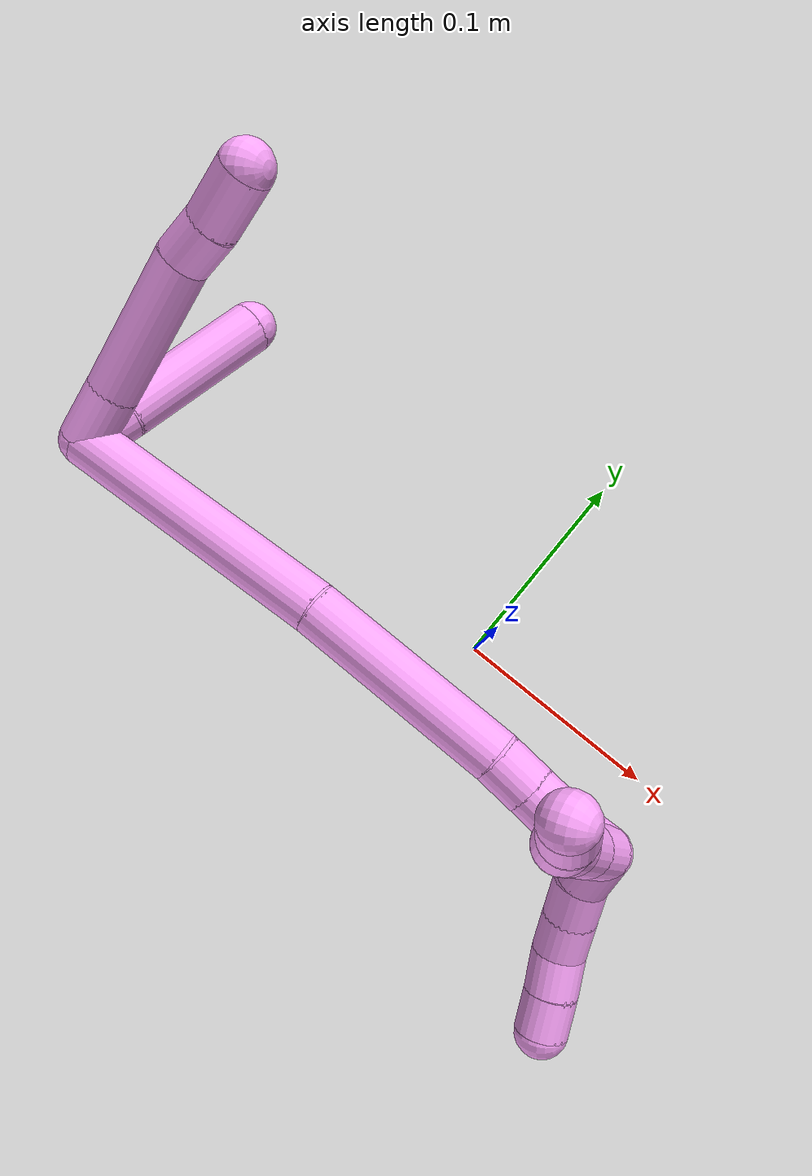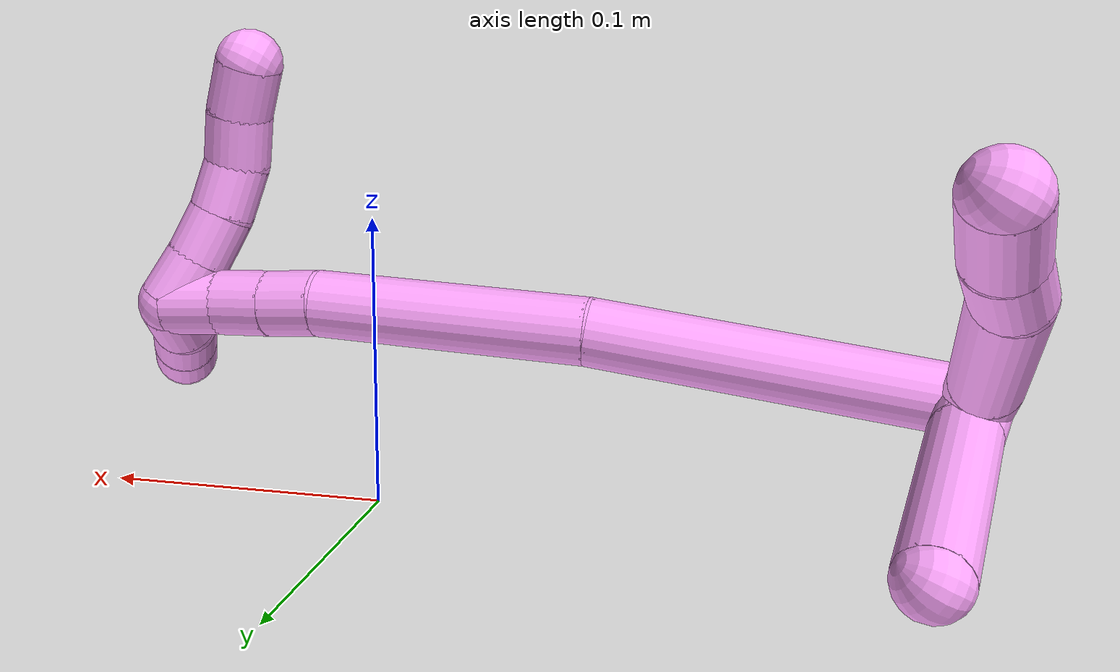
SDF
<sdf version="1.7">
 <world name="default">
  <model name="4">
   <static>0</static>
   <link name="4">
    <collision name="collision-cylinder-e_1_2_8">
     <pose>-0.012377 0.001335 0.006874 -0.191806 -1.05591 0.112083</pose>
     <geometry><cylinder><radius>0.0125</radius><length>0.028441</length></cylinder></geometry>
     <surface>
      <friction><ode><mu>1.16</mu><mu2>1.16</mu2><slip1>0</slip1><slip2>0</slip2></ode></friction>
      <contact><ode><kp>1e+06</kp><kd>1</kd><max_vel>0</max_vel><min_depth>0.001</min_depth></ode></contact>
     </surface>
    </collision>
    <visual name="visual-cylinder-e_1_2_8">
     <pose>-0.012377 0.001335 0.006874 -0.191806 -1.05591 0.112083</pose>
     <geometry><cylinder><radius>0.0125</radius><length>0.028441</length></cylinder></geometry>
     <material><ambient>1 0.65098 0.996078 1</ambient></material>
    </visual>
    <collision name="collision-cylinder-e_2_8_9">
     <pose>-0.054996 0.003593 0.03191 -0.050766 -1.02941 0.028715</pose>
     <geometry><cylinder><radius>0.0125</radius><length>0.070579</length></cylinder></geometry>
     <surface>
      <friction><ode><mu>1.16</mu><mu2>1.16</mu2><slip1>0</slip1><slip2>0</slip2></ode></friction>
      <contact><ode><kp>1e+06</kp><kd>1</kd><max_vel>0</max_vel><min_depth>0.001</min_depth></ode></contact>
     </surface>
    </collision>
    <visual name="visual-cylinder-e_2_8_9">
     <pose>-0.054996 0.003593 0.03191 -0.050766 -1.02941 0.028715</pose>
     <geometry><cylinder><radius>0.0125</radius><length>0.070579</length></cylinder></geometry>
     <material><ambient>1 0.65098 0.996078 1</ambient></material>
    </visual>
    <collision name="collision-cylinder-e_3_9_10">
     <pose>-0.093146 0.00451 0.05774 0.000712 -0.800772 -0.000301</pose>
     <geometry><cylinder><radius>0.0125</radius><length>0.022028</length></cylinder></geometry>
     <surface>
      <friction><ode><mu>1.16</mu><mu2>1.16</mu2><slip1>0</slip1><slip2>0</slip2></ode></friction>
      <contact><ode><kp>1e+06</kp><kd>1</kd><max_vel>0</max_vel><min_depth>0.001</min_depth></ode></contact>
     </surface>
    </collision>
    <visual name="visual-cylinder-e_3_9_10">
     <pose>-0.093146 0.00451 0.05774 0.000712 -0.800772 -0.000301</pose>
     <geometry><cylinder><radius>0.0125</radius><length>0.022028</length></cylinder></geometry>
     <material><ambient>1 0.65098 0.996078 1</ambient></material>
    </visual>
    <collision name="collision-cylinder-e_4_10_6">
     <pose>-0.112281 0.003115 0.074438 0.15265 -0.887715 -0.072695</pose>
     <geometry><cylinder><radius>0.0125</radius><length>0.028952</length></cylinder></geometry>
     <surface>
      <friction><ode><mu>1.16</mu><mu2>1.16</mu2><slip1>0</slip1><slip2>0</slip2></ode></friction>
      <contact><ode><kp>1e+06</kp><kd>1</kd><max_vel>0</max_vel><min_depth>0.001</min_depth></ode></contact>
     </surface>
    </collision>
    <visual name="visual-cylinder-e_4_10_6">
     <pose>-0.112281 0.003115 0.074438 0.15265 -0.887715 -0.072695</pose>
     <geometry><cylinder><radius>0.0125</radius><length>0.028952</length></cylinder></geometry>
     <material><ambient>1 0.65098 0.996078 1</ambient></material>
    </visual>
    <collision name="collision-cylinder-e_1_2_11">
     <pose>-0.006303 0.008931 0.004195 -1.13169 -0.568483 0.36693</pose>
     <geometry><cylinder><radius>0.0125</radius><length>0.023417</length></cylinder></geometry>
     <surface>
      <friction><ode><mu>1.16</mu><mu2>1.16</mu2><slip1>0</slip1><slip2>0</slip2></ode></friction>
      <contact><ode><kp>1e+06</kp><kd>1</kd><max_vel>0</max_vel><min_depth>0.001</min_depth></ode></contact>
     </surface>
    </collision>
    <visual name="visual-cylinder-e_1_2_11">
     <pose>-0.006303 0.008931 0.004195 -1.13169 -0.568483 0.36693</pose>
     <geometry><cylinder><radius>0.0125</radius><length>0.023417</length></cylinder></geometry>
     <material><ambient>1 0.65098 0.996078 1</ambient></material>
    </visual>
    <collision name="collision-cylinder-e_2_11_5">
     <pose>-0.033185 0.048361 0.019 -1.23599 -0.567356 0.40872</pose>
     <geometry><cylinder><radius>0.0125</radius><length>0.076583</length></cylinder></geometry>
     <surface>
      <friction><ode><mu>1.16</mu><mu2>1.16</mu2><slip1>0</slip1><slip2>0</slip2></ode></friction>
      <contact><ode><kp>1e+06</kp><kd>1</kd><max_vel>0</max_vel><min_depth>0.001</min_depth></ode></contact>
     </surface>
    </collision>
    <visual name="visual-cylinder-e_2_11_5">
     <pose>-0.033185 0.048361 0.019 -1.23599 -0.567356 0.40872</pose>
     <geometry><cylinder><radius>0.0125</radius><length>0.076583</length></cylinder></geometry>
     <material><ambient>1 0.65098 0.996078 1</ambient></material>
    </visual>
    <collision name="collision-cylinder-e_1_2_12">
     <pose>0.027698 0.010768 0.061018 -0.174679 0.420372 -0.037356</pose>
     <geometry><cylinder><radius>0.0125</radius><length>0.13574</length></cylinder></geometry>
     <surface>
      <friction><ode><mu>1.16</mu><mu2>1.16</mu2><slip1>0</slip1><slip2>0</slip2></ode></friction>
      <contact><ode><kp>1e+06</kp><kd>1</kd><max_vel>0</max_vel><min_depth>0.001</min_depth></ode></contact>
     </surface>
    </collision>
    <visual name="visual-cylinder-e_1_2_12">
     <pose>0.027698 0.010768 0.061018 -0.174679 0.420372 -0.037356</pose>
     <geometry><cylinder><radius>0.0125</radius><length>0.13574</length></cylinder></geometry>
     <material><ambient>1 0.65098 0.996078 1</ambient></material>
    </visual>
    <collision name="collision-cylinder-e_2_12_13">
     <pose>0.080225 0.032073 0.16552 -0.237731 0.50663 -0.061815</pose>
     <geometry><cylinder><radius>0.0125</radius><length>0.10234</length></cylinder></geometry>
     <surface>
      <friction><ode><mu>1.16</mu><mu2>1.16</mu2><slip1>0</slip1><slip2>0</slip2></ode></friction>
      <contact><ode><kp>1e+06</kp><kd>1</kd><max_vel>0</max_vel><min_depth>0.001</min_depth></ode></contact>
     </surface>
    </collision>
    <visual name="visual-cylinder-e_2_12_13">
     <pose>0.080225 0.032073 0.16552 -0.237731 0.50663 -0.061815</pose>
     <geometry><cylinder><radius>0.0125</radius><length>0.10234</length></cylinder></geometry>
     <material><ambient>1 0.65098 0.996078 1</ambient></material>
    </visual>
    <collision name="collision-cylinder-e_3_13_14">
     <pose>0.110928 0.045212 0.216767 -0.32344 0.622372 -0.10485</pose>
     <geometry><cylinder><radius>0.0125</radius><length>0.020153</length></cylinder></geometry>
     <surface>
      <friction><ode><mu>1.16</mu><mu2>1.16</mu2><slip1>0</slip1><slip2>0</slip2></ode></friction>
      <contact><ode><kp>1e+06</kp><kd>1</kd><max_vel>0</max_vel><min_depth>0.001</min_depth></ode></contact>
     </surface>
    </collision>
    <visual name="visual-cylinder-e_3_13_14">
     <pose>0.110928 0.045212 0.216767 -0.32344 0.622372 -0.10485</pose>
     <geometry><cylinder><radius>0.0125</radius><length>0.020153</length></cylinder></geometry>
     <material><ambient>1 0.65098 0.996078 1</ambient></material>
    </visual>
    <collision name="collision-cylinder-e_4_14_15">
     <pose>0.122803 0.050227 0.232623 -0.289658 0.617726 -0.093007</pose>
     <geometry><cylinder><radius>0.0125</radius><length>0.02072</length></cylinder></geometry>
     <surface>
      <friction><ode><mu>1.16</mu><mu2>1.16</mu2><slip1>0</slip1><slip2>0</slip2></ode></friction>
      <contact><ode><kp>1e+06</kp><kd>1</kd><max_vel>0</max_vel><min_depth>0.001</min_depth></ode></contact>
     </surface>
    </collision>
    <visual name="visual-cylinder-e_4_14_15">
     <pose>0.122803 0.050227 0.232623 -0.289658 0.617726 -0.093007</pose>
     <geometry><cylinder><radius>0.0125</radius><length>0.02072</length></cylinder></geometry>
     <material><ambient>1 0.65098 0.996078 1</ambient></material>
    </visual>
    <collision name="collision-cylinder-e_5_15_1">
     <pose>0.133884 0.055839 0.249359 -0.354649 0.503882 -0.092194</pose>
     <geometry><cylinder><radius>0.0125</radius><length>0.021047</length></cylinder></geometry>
     <surface>
      <friction><ode><mu>1.16</mu><mu2>1.16</mu2><slip1>0</slip1><slip2>0</slip2></ode></friction>
      <contact><ode><kp>1e+06</kp><kd>1</kd><max_vel>0</max_vel><min_depth>0.001</min_depth></ode></contact>
     </surface>
    </collision>
    <visual name="visual-cylinder-e_5_15_1">
     <pose>0.133884 0.055839 0.249359 -0.354649 0.503882 -0.092194</pose>
     <geometry><cylinder><radius>0.0125</radius><length>0.021047</length></cylinder></geometry>
     <material><ambient>1 0.65098 0.996078 1</ambient></material>
    </visual>
    <collision name="collision-cylinder-e_1_1_16">
     <pose>0.134964 0.049916 0.257133 1.66562 -0.411643 -0.451332</pose>
     <geometry><cylinder><radius>0.0125</radius><length>0.02</length></cylinder></geometry>
     <surface>
      <friction><ode><mu>1.16</mu><mu2>1.16</mu2><slip1>0</slip1><slip2>0</slip2></ode></friction>
      <contact><ode><kp>1e+06</kp><kd>1</kd><max_vel>0</max_vel><min_depth>0.001</min_depth></ode></contact>
     </surface>
    </collision>
    <visual name="visual-cylinder-e_1_1_16">
     <pose>0.134964 0.049916 0.257133 1.66562 -0.411643 -0.451332</pose>
     <geometry><cylinder><radius>0.0125</radius><length>0.02</length></cylinder></geometry>
     <material><ambient>1 0.65098 0.996078 1</ambient></material>
    </visual>
    <collision name="collision-cylinder-e_2_16_17">
     <pose>0.126657 0.031767 0.256275 1.56971 -0.44518 -0.444711</pose>
     <geometry><cylinder><radius>0.0125</radius><length>0.02</length></cylinder></geometry>
     <surface>
      <friction><ode><mu>1.16</mu><mu2>1.16</mu2><slip1>0</slip1><slip2>0</slip2></ode></friction>
      <contact><ode><kp>1e+06</kp><kd>1</kd><max_vel>0</max_vel><min_depth>0.001</min_depth></ode></contact>
     </surface>
    </collision>
    <visual name="visual-cylinder-e_2_16_17">
     <pose>0.126657 0.031767 0.256275 1.56971 -0.44518 -0.444711</pose>
     <geometry><cylinder><radius>0.0125</radius><length>0.02</length></cylinder></geometry>
     <material><ambient>1 0.65098 0.996078 1</ambient></material>
    </visual>
    <collision name="collision-cylinder-e_3_17_18">
     <pose>0.11805 0.013856 0.257882 1.39299 -0.444612 -0.373675</pose>
     <geometry><cylinder><radius>0.0125</radius><length>0.02</length></cylinder></geometry>
     <surface>
      <friction><ode><mu>1.16</mu><mu2>1.16</mu2><slip1>0</slip1><slip2>0</slip2></ode></friction>
      <contact><ode><kp>1e+06</kp><kd>1</kd><max_vel>0</max_vel><min_depth>0.001</min_depth></ode></contact>
     </surface>
    </collision>
    <visual name="visual-cylinder-e_3_17_18">
     <pose>0.11805 0.013856 0.257882 1.39299 -0.444612 -0.373675</pose>
     <geometry><cylinder><radius>0.0125</radius><length>0.02</length></cylinder></geometry>
     <material><ambient>1 0.65098 0.996078 1</ambient></material>
    </visual>
    <collision name="collision-cylinder-e_4_18_19">
     <pose>0.107826 -0.002165 0.263221 1.0878 -0.633856 -0.391611</pose>
     <geometry><cylinder><radius>0.0125</radius><length>0.02</length></cylinder></geometry>
     <surface>
      <friction><ode><mu>1.16</mu><mu2>1.16</mu2><slip1>0</slip1><slip2>0</slip2></ode></friction>
      <contact><ode><kp>1e+06</kp><kd>1</kd><max_vel>0</max_vel><min_depth>0.001</min_depth></ode></contact>
     </surface>
    </collision>
    <visual name="visual-cylinder-e_4_18_19">
     <pose>0.107826 -0.002165 0.263221 1.0878 -0.633856 -0.391611</pose>
     <geometry><cylinder><radius>0.0125</radius><length>0.02</length></cylinder></geometry>
     <material><ambient>1 0.65098 0.996078 1</ambient></material>
    </visual>
    <collision name="collision-cylinder-e_5_19_4">
     <pose>0.095252 -0.016385 0.269325 1.24887 -0.727652 -0.535613</pose>
     <geometry><cylinder><radius>0.0125</radius><length>0.02</length></cylinder></geometry>
     <surface>
      <friction><ode><mu>1.16</mu><mu2>1.16</mu2><slip1>0</slip1><slip2>0</slip2></ode></friction>
      <contact><ode><kp>1e+06</kp><kd>1</kd><max_vel>0</max_vel><min_depth>0.001</min_depth></ode></contact>
     </surface>
    </collision>
    <visual name="visual-cylinder-e_5_19_4">
     <pose>0.095252 -0.016385 0.269325 1.24887 -0.727652 -0.535613</pose>
     <geometry><cylinder><radius>0.0125</radius><length>0.02</length></cylinder></geometry>
     <material><ambient>1 0.65098 0.996078 1</ambient></material>
    </visual>
    <collision name="collision-cylinder-e_1_1_20">
     <pose>0.148011 0.060046 0.253858 -2.90319 1.13031 -2.76826</pose>
     <geometry><cylinder><radius>0.0125</radius><length>0.02</length></cylinder></geometry>
     <surface>
      <friction><ode><mu>1.16</mu><mu2>1.16</mu2><slip1>0</slip1><slip2>0</slip2></ode></friction>
      <contact><ode><kp>1e+06</kp><kd>1</kd><max_vel>0</max_vel><min_depth>0.001</min_depth></ode></contact>
     </surface>
    </collision>
    <visual name="visual-cylinder-e_1_1_20">
     <pose>0.148011 0.060046 0.253858 -2.90319 1.13031 -2.76826</pose>
     <geometry><cylinder><radius>0.0125</radius><length>0.02</length></cylinder></geometry>
     <material><ambient>1 0.65098 0.996078 1</ambient></material>
    </visual>
    <collision name="collision-cylinder-e_2_20_21">
     <pose>0.166876 0.062091 0.248133 -2.56079 1.38045 -2.44707</pose>
     <geometry><cylinder><radius>0.0125</radius><length>0.02</length></cylinder></geometry>
     <surface>
      <friction><ode><mu>1.16</mu><mu2>1.16</mu2><slip1>0</slip1><slip2>0</slip2></ode></friction>
      <contact><ode><kp>1e+06</kp><kd>1</kd><max_vel>0</max_vel><min_depth>0.001</min_depth></ode></contact>
     </surface>
    </collision>
    <visual name="visual-cylinder-e_2_20_21">
     <pose>0.166876 0.062091 0.248133 -2.56079 1.38045 -2.44707</pose>
     <geometry><cylinder><radius>0.0125</radius><length>0.02</length></cylinder></geometry>
     <material><ambient>1 0.65098 0.996078 1</ambient></material>
    </visual>
    <collision name="collision-cylinder-e_3_21_22">
     <pose>0.186601 0.063473 0.245224 -2.88825 1.43332 -2.85128</pose>
     <geometry><cylinder><radius>0.0125</radius><length>0.02</length></cylinder></geometry>
     <surface>
      <friction><ode><mu>1.16</mu><mu2>1.16</mu2><slip1>0</slip1><slip2>0</slip2></ode></friction>
      <contact><ode><kp>1e+06</kp><kd>1</kd><max_vel>0</max_vel><min_depth>0.001</min_depth></ode></contact>
     </surface>
    </collision>
    <visual name="visual-cylinder-e_3_21_22">
     <pose>0.186601 0.063473 0.245224 -2.88825 1.43332 -2.85128</pose>
     <geometry><cylinder><radius>0.0125</radius><length>0.02</length></cylinder></geometry>
     <material><ambient>1 0.65098 0.996078 1</ambient></material>
    </visual>
    <collision name="collision-cylinder-e_4_22_23">
     <pose>0.206317 0.061919 0.244282 1.37063 1.37598 1.1833</pose>
     <geometry><cylinder><radius>0.0125</radius><length>0.02</length></cylinder></geometry>
     <surface>
      <friction><ode><mu>1.16</mu><mu2>1.16</mu2><slip1>0</slip1><slip2>0</slip2></ode></friction>
      <contact><ode><kp>1e+06</kp><kd>1</kd><max_vel>0</max_vel><min_depth>0.001</min_depth></ode></contact>
     </surface>
    </collision>
    <visual name="visual-cylinder-e_4_22_23">
     <pose>0.206317 0.061919 0.244282 1.37063 1.37598 1.1833</pose>
     <geometry><cylinder><radius>0.0125</radius><length>0.02</length></cylinder></geometry>
     <material><ambient>1 0.65098 0.996078 1</ambient></material>
    </visual>
    <collision name="collision-cylinder-e_5_23_3">
     <pose>0.225973 0.058273 0.244518 1.65565 1.39435 1.47851</pose>
     <geometry><cylinder><radius>0.0125</radius><length>0.02</length></cylinder></geometry>
     <surface>
      <friction><ode><mu>1.16</mu><mu2>1.16</mu2><slip1>0</slip1><slip2>0</slip2></ode></friction>
      <contact><ode><kp>1e+06</kp><kd>1</kd><max_vel>0</max_vel><min_depth>0.001</min_depth></ode></contact>
     </surface>
    </collision>
    <visual name="visual-cylinder-e_5_23_3">
     <pose>0.225973 0.058273 0.244518 1.65565 1.39435 1.47851</pose>
     <geometry><cylinder><radius>0.0125</radius><length>0.02</length></cylinder></geometry>
     <material><ambient>1 0.65098 0.996078 1</ambient></material>
    </visual>
    <collision name="collision-sphere-3">
     <pose>0.235818 0.056524 0.24437 0 -0 0</pose>
     <geometry><sphere><radius>0.0125</radius></sphere></geometry>
     <surface>
      <friction><ode><mu>1.16</mu><mu2>1.16</mu2><slip1>0</slip1><slip2>0</slip2></ode></friction>
      <contact><ode><kp>1e+06</kp><kd>1</kd><max_vel>0</max_vel><min_depth>0.001</min_depth></ode></contact>
     </surface>
    </collision>
    <visual name="visual-sphere-3">
     <pose>0.235818 0.056524 0.24437 0 -0 0</pose>
     <geometry><sphere><radius>0.0125</radius></sphere></geometry>
     <material><ambient>1 0.65098 0.996078 1</ambient></material>
    </visual>
    <collision name="collision-sphere-23">
     <pose>0.216128 0.060022 0.244667 0 -0 0</pose>
     <geometry><sphere><radius>0.0125</radius></sphere></geometry>
     <surface>
      <friction><ode><mu>1.16</mu><mu2>1.16</mu2><slip1>0</slip1><slip2>0</slip2></ode></friction>
      <contact><ode><kp>1e+06</kp><kd>1</kd><max_vel>0</max_vel><min_depth>0.001</min_depth></ode></contact>
     </surface>
    </collision>
    <visual name="visual-sphere-23">
     <pose>0.216128 0.060022 0.244667 0 -0 0</pose>
     <geometry><sphere><radius>0.0125</radius></sphere></geometry>
     <material><ambient>1 0.65098 0.996078 1</ambient></material>
    </visual>
    <collision name="collision-sphere-22">
     <pose>0.196506 0.063816 0.243897 0 -0 0</pose>
     <geometry><sphere><radius>0.0125</radius></sphere></geometry>
     <surface>
      <friction><ode><mu>1.16</mu><mu2>1.16</mu2><slip1>0</slip1><slip2>0</slip2></ode></friction>
      <contact><ode><kp>1e+06</kp><kd>1</kd><max_vel>0</max_vel><min_depth>0.001</min_depth></ode></contact>
     </surface>
    </collision>
    <visual name="visual-sphere-22">
     <pose>0.196506 0.063816 0.243897 0 -0 0</pose>
     <geometry><sphere><radius>0.0125</radius></sphere></geometry>
     <material><ambient>1 0.65098 0.996078 1</ambient></material>
    </visual>
    <collision name="collision-sphere-21">
     <pose>0.176695 0.063129 0.246551 0 -0 0</pose>
     <geometry><sphere><radius>0.0125</radius></sphere></geometry>
     <surface>
      <friction><ode><mu>1.16</mu><mu2>1.16</mu2><slip1>0</slip1><slip2>0</slip2></ode></friction>
      <contact><ode><kp>1e+06</kp><kd>1</kd><max_vel>0</max_vel><min_depth>0.001</min_depth></ode></contact>
     </surface>
    </collision>
    <visual name="visual-sphere-21">
     <pose>0.176695 0.063129 0.246551 0 -0 0</pose>
     <geometry><sphere><radius>0.0125</radius></sphere></geometry>
     <material><ambient>1 0.65098 0.996078 1</ambient></material>
    </visual>
    <collision name="collision-sphere-20">
     <pose>0.157056 0.061053 0.249714 0 -0 0</pose>
     <geometry><sphere><radius>0.0125</radius></sphere></geometry>
     <surface>
      <friction><ode><mu>1.16</mu><mu2>1.16</mu2><slip1>0</slip1><slip2>0</slip2></ode></friction>
      <contact><ode><kp>1e+06</kp><kd>1</kd><max_vel>0</max_vel><min_depth>0.001</min_depth></ode></contact>
     </surface>
    </collision>
    <visual name="visual-sphere-20">
     <pose>0.157056 0.061053 0.249714 0 -0 0</pose>
     <geometry><sphere><radius>0.0125</radius></sphere></geometry>
     <material><ambient>1 0.65098 0.996078 1</ambient></material>
    </visual>
    <collision name="collision-sphere-4">
     <pose>0.088601 -0.023468 0.271688 0 -0 0</pose>
     <geometry><sphere><radius>0.0125</radius></sphere></geometry>
     <surface>
      <friction><ode><mu>1.16</mu><mu2>1.16</mu2><slip1>0</slip1><slip2>0</slip2></ode></friction>
      <contact><ode><kp>1e+06</kp><kd>1</kd><max_vel>0</max_vel><min_depth>0.001</min_depth></ode></contact>
     </surface>
    </collision>
    <visual name="visual-sphere-4">
     <pose>0.088601 -0.023468 0.271688 0 -0 0</pose>
     <geometry><sphere><radius>0.0125</radius></sphere></geometry>
     <material><ambient>1 0.65098 0.996078 1</ambient></material>
    </visual>
    <collision name="collision-sphere-11">
     <pose>-0.012607 0.017862 0.00839 0 -0 0</pose>
     <geometry><sphere><radius>0.0125</radius></sphere></geometry>
     <surface>
      <friction><ode><mu>1.16</mu><mu2>1.16</mu2><slip1>0</slip1><slip2>0</slip2></ode></friction>
      <contact><ode><kp>1e+06</kp><kd>1</kd><max_vel>0</max_vel><min_depth>0.001</min_depth></ode></contact>
     </surface>
    </collision>
    <visual name="visual-sphere-11">
     <pose>-0.012607 0.017862 0.00839 0 -0 0</pose>
     <geometry><sphere><radius>0.0125</radius></sphere></geometry>
     <material><ambient>1 0.65098 0.996078 1</ambient></material>
    </visual>
    <collision name="collision-sphere-6">
     <pose>-0.123509 0.001726 0.083469 0 -0 0</pose>
     <geometry><sphere><radius>0.0125</radius></sphere></geometry>
     <surface>
      <friction><ode><mu>1.16</mu><mu2>1.16</mu2><slip1>0</slip1><slip2>0</slip2></ode></friction>
      <contact><ode><kp>1e+06</kp><kd>1</kd><max_vel>0</max_vel><min_depth>0.001</min_depth></ode></contact>
     </surface>
    </collision>
    <visual name="visual-sphere-6">
     <pose>-0.123509 0.001726 0.083469 0 -0 0</pose>
     <geometry><sphere><radius>0.0125</radius></sphere></geometry>
     <material><ambient>1 0.65098 0.996078 1</ambient></material>
    </visual>
    <collision name="collision-sphere-10">
     <pose>-0.101053 0.004505 0.065407 0 -0 0</pose>
     <geometry><sphere><radius>0.0125</radius></sphere></geometry>
     <surface>
      <friction><ode><mu>1.16</mu><mu2>1.16</mu2><slip1>0</slip1><slip2>0</slip2></ode></friction>
      <contact><ode><kp>1e+06</kp><kd>1</kd><max_vel>0</max_vel><min_depth>0.001</min_depth></ode></contact>
     </surface>
    </collision>
    <visual name="visual-sphere-10">
     <pose>-0.101053 0.004505 0.065407 0 -0 0</pose>
     <geometry><sphere><radius>0.0125</radius></sphere></geometry>
     <material><ambient>1 0.65098 0.996078 1</ambient></material>
    </visual>
    <collision name="collision-sphere-9">
     <pose>-0.085239 0.004515 0.050073 0 -0 0</pose>
     <geometry><sphere><radius>0.0125</radius></sphere></geometry>
     <surface>
      <friction><ode><mu>1.16</mu><mu2>1.16</mu2><slip1>0</slip1><slip2>0</slip2></ode></friction>
      <contact><ode><kp>1e+06</kp><kd>1</kd><max_vel>0</max_vel><min_depth>0.001</min_depth></ode></contact>
     </surface>
    </collision>
    <visual name="visual-sphere-9">
     <pose>-0.085239 0.004515 0.050073 0 -0 0</pose>
     <geometry><sphere><radius>0.0125</radius></sphere></geometry>
     <material><ambient>1 0.65098 0.996078 1</ambient></material>
    </visual>
    <collision name="collision-sphere-2">
     <geometry><sphere><radius>0.0125</radius></sphere></geometry>
     <surface>
      <friction><ode><mu>1.16</mu><mu2>1.16</mu2><slip1>0</slip1><slip2>0</slip2></ode></friction>
      <contact><ode><kp>1e+06</kp><kd>1</kd><max_vel>0</max_vel><min_depth>0.001</min_depth></ode></contact>
     </surface>
    </collision>
    <visual name="visual-sphere-2">
     <geometry><sphere><radius>0.0125</radius></sphere></geometry>
     <material><ambient>1 0.65098 0.996078 1</ambient></material>
    </visual>
    <collision name="collision-sphere-19">
     <pose>0.101903 -0.009301 0.266963 0 -0 0</pose>
     <geometry><sphere><radius>0.0125</radius></sphere></geometry>
     <surface>
      <friction><ode><mu>1.16</mu><mu2>1.16</mu2><slip1>0</slip1><slip2>0</slip2></ode></friction>
      <contact><ode><kp>1e+06</kp><kd>1</kd><max_vel>0</max_vel><min_depth>0.001</min_depth></ode></contact>
     </surface>
    </collision>
    <visual name="visual-sphere-19">
     <pose>0.101903 -0.009301 0.266963 0 -0 0</pose>
     <geometry><sphere><radius>0.0125</radius></sphere></geometry>
     <material><ambient>1 0.65098 0.996078 1</ambient></material>
    </visual>
    <collision name="collision-sphere-8">
     <pose>-0.024753 0.00267 0.013748 0 -0 0</pose>
     <geometry><sphere><radius>0.0125</radius></sphere></geometry>
     <surface>
      <friction><ode><mu>1.16</mu><mu2>1.16</mu2><slip1>0</slip1><slip2>0</slip2></ode></friction>
      <contact><ode><kp>1e+06</kp><kd>1</kd><max_vel>0</max_vel><min_depth>0.001</min_depth></ode></contact>
     </surface>
    </collision>
    <visual name="visual-sphere-8">
     <pose>-0.024753 0.00267 0.013748 0 -0 0</pose>
     <geometry><sphere><radius>0.0125</radius></sphere></geometry>
     <material><ambient>1 0.65098 0.996078 1</ambient></material>
    </visual>
    <collision name="collision-sphere-5">
     <pose>-0.053763 0.07886 0.029611 0 -0 0</pose>
     <geometry><sphere><radius>0.0125</radius></sphere></geometry>
     <surface>
      <friction><ode><mu>1.16</mu><mu2>1.16</mu2><slip1>0</slip1><slip2>0</slip2></ode></friction>
      <contact><ode><kp>1e+06</kp><kd>1</kd><max_vel>0</max_vel><min_depth>0.001</min_depth></ode></contact>
     </surface>
    </collision>
    <visual name="visual-sphere-5">
     <pose>-0.053763 0.07886 0.029611 0 -0 0</pose>
     <geometry><sphere><radius>0.0125</radius></sphere></geometry>
     <material><ambient>1 0.65098 0.996078 1</ambient></material>
    </visual>
    <collision name="collision-sphere-12">
     <pose>0.055395 0.021537 0.122036 0 -0 0</pose>
     <geometry><sphere><radius>0.0125</radius></sphere></geometry>
     <surface>
      <friction><ode><mu>1.16</mu><mu2>1.16</mu2><slip1>0</slip1><slip2>0</slip2></ode></friction>
      <contact><ode><kp>1e+06</kp><kd>1</kd><max_vel>0</max_vel><min_depth>0.001</min_depth></ode></contact>
     </surface>
    </collision>
    <visual name="visual-sphere-12">
     <pose>0.055395 0.021537 0.122036 0 -0 0</pose>
     <geometry><sphere><radius>0.0125</radius></sphere></geometry>
     <material><ambient>1 0.65098 0.996078 1</ambient></material>
    </visual>
    <collision name="collision-sphere-13">
     <pose>0.105054 0.04261 0.209004 0 -0 0</pose>
     <geometry><sphere><radius>0.0125</radius></sphere></geometry>
     <surface>
      <friction><ode><mu>1.16</mu><mu2>1.16</mu2><slip1>0</slip1><slip2>0</slip2></ode></friction>
      <contact><ode><kp>1e+06</kp><kd>1</kd><max_vel>0</max_vel><min_depth>0.001</min_depth></ode></contact>
     </surface>
    </collision>
    <visual name="visual-sphere-13">
     <pose>0.105054 0.04261 0.209004 0 -0 0</pose>
     <geometry><sphere><radius>0.0125</radius></sphere></geometry>
     <material><ambient>1 0.65098 0.996078 1</ambient></material>
    </visual>
    <collision name="collision-sphere-14">
     <pose>0.116803 0.047814 0.224529 0 -0 0</pose>
     <geometry><sphere><radius>0.0125</radius></sphere></geometry>
     <surface>
      <friction><ode><mu>1.16</mu><mu2>1.16</mu2><slip1>0</slip1><slip2>0</slip2></ode></friction>
      <contact><ode><kp>1e+06</kp><kd>1</kd><max_vel>0</max_vel><min_depth>0.001</min_depth></ode></contact>
     </surface>
    </collision>
    <visual name="visual-sphere-14">
     <pose>0.116803 0.047814 0.224529 0 -0 0</pose>
     <geometry><sphere><radius>0.0125</radius></sphere></geometry>
     <material><ambient>1 0.65098 0.996078 1</ambient></material>
    </visual>
    <collision name="collision-sphere-15">
     <pose>0.128803 0.052639 0.240716 0 -0 0</pose>
     <geometry><sphere><radius>0.0125</radius></sphere></geometry>
     <surface>
      <friction><ode><mu>1.16</mu><mu2>1.16</mu2><slip1>0</slip1><slip2>0</slip2></ode></friction>
      <contact><ode><kp>1e+06</kp><kd>1</kd><max_vel>0</max_vel><min_depth>0.001</min_depth></ode></contact>
     </surface>
    </collision>
    <visual name="visual-sphere-15">
     <pose>0.128803 0.052639 0.240716 0 -0 0</pose>
     <geometry><sphere><radius>0.0125</radius></sphere></geometry>
     <material><ambient>1 0.65098 0.996078 1</ambient></material>
    </visual>
    <collision name="collision-sphere-1">
     <pose>0.138965 0.059039 0.258001 0 -0 0</pose>
     <geometry><sphere><radius>0.0125</radius></sphere></geometry>
     <surface>
      <friction><ode><mu>1.16</mu><mu2>1.16</mu2><slip1>0</slip1><slip2>0</slip2></ode></friction>
      <contact><ode><kp>1e+06</kp><kd>1</kd><max_vel>0</max_vel><min_depth>0.001</min_depth></ode></contact>
     </surface>
    </collision>
    <visual name="visual-sphere-1">
     <pose>0.138965 0.059039 0.258001 0 -0 0</pose>
     <geometry><sphere><radius>0.0125</radius></sphere></geometry>
     <material><ambient>1 0.65098 0.996078 1</ambient></material>
    </visual>
    <collision name="collision-sphere-18">
     <pose>0.113749 0.004971 0.259478 0 -0 0</pose>
     <geometry><sphere><radius>0.0125</radius></sphere></geometry>
     <surface>
      <friction><ode><mu>1.16</mu><mu2>1.16</mu2><slip1>0</slip1><slip2>0</slip2></ode></friction>
      <contact><ode><kp>1e+06</kp><kd>1</kd><max_vel>0</max_vel><min_depth>0.001</min_depth></ode></contact>
     </surface>
    </collision>
    <visual name="visual-sphere-18">
     <pose>0.113749 0.004971 0.259478 0 -0 0</pose>
     <geometry><sphere><radius>0.0125</radius></sphere></geometry>
     <material><ambient>1 0.65098 0.996078 1</ambient></material>
    </visual>
    <collision name="collision-sphere-16">
     <pose>0.130963 0.040792 0.256265 0 -0 0</pose>
     <geometry><sphere><radius>0.0125</radius></sphere></geometry>
     <surface>
      <friction><ode><mu>1.16</mu><mu2>1.16</mu2><slip1>0</slip1><slip2>0</slip2></ode></friction>
      <contact><ode><kp>1e+06</kp><kd>1</kd><max_vel>0</max_vel><min_depth>0.001</min_depth></ode></contact>
     </surface>
    </collision>
    <visual name="visual-sphere-16">
     <pose>0.130963 0.040792 0.256265 0 -0 0</pose>
     <geometry><sphere><radius>0.0125</radius></sphere></geometry>
     <material><ambient>1 0.65098 0.996078 1</ambient></material>
    </visual>
    <collision name="collision-sphere-17">
     <pose>0.122351 0.022742 0.256285 0 -0 0</pose>
     <geometry><sphere><radius>0.0125</radius></sphere></geometry>
     <surface>
      <friction><ode><mu>1.16</mu><mu2>1.16</mu2><slip1>0</slip1><slip2>0</slip2></ode></friction>
      <contact><ode><kp>1e+06</kp><kd>1</kd><max_vel>0</max_vel><min_depth>0.001</min_depth></ode></contact>
     </surface>
    </collision>
    <visual name="visual-sphere-17">
     <pose>0.122351 0.022742 0.256285 0 -0 0</pose>
     <geometry><sphere><radius>0.0125</radius></sphere></geometry>
     <material><ambient>1 0.65098 0.996078 1</ambient></material>
    </visual>
    <inertial>
     <pose>0.050231 0.026561 0.130512 0 -0 0</pose>
     <mass>0.75</mass>
     <inertia>
      <ixx>0.000339</ixx>
      <ixy>0</ixy>
      <ixz>0</ixz>
      <iyy>0.000381</iyy>
      <iyz>0</iyz>
      <izz>-0.000136</izz>
     </inertia>
    </inertial>
   </link>
   <pose>-0.200828 -0.043394 0.036906 -1.02124 0.419078 -0.990488</pose>
  </model>
 </world>
</sdf>
